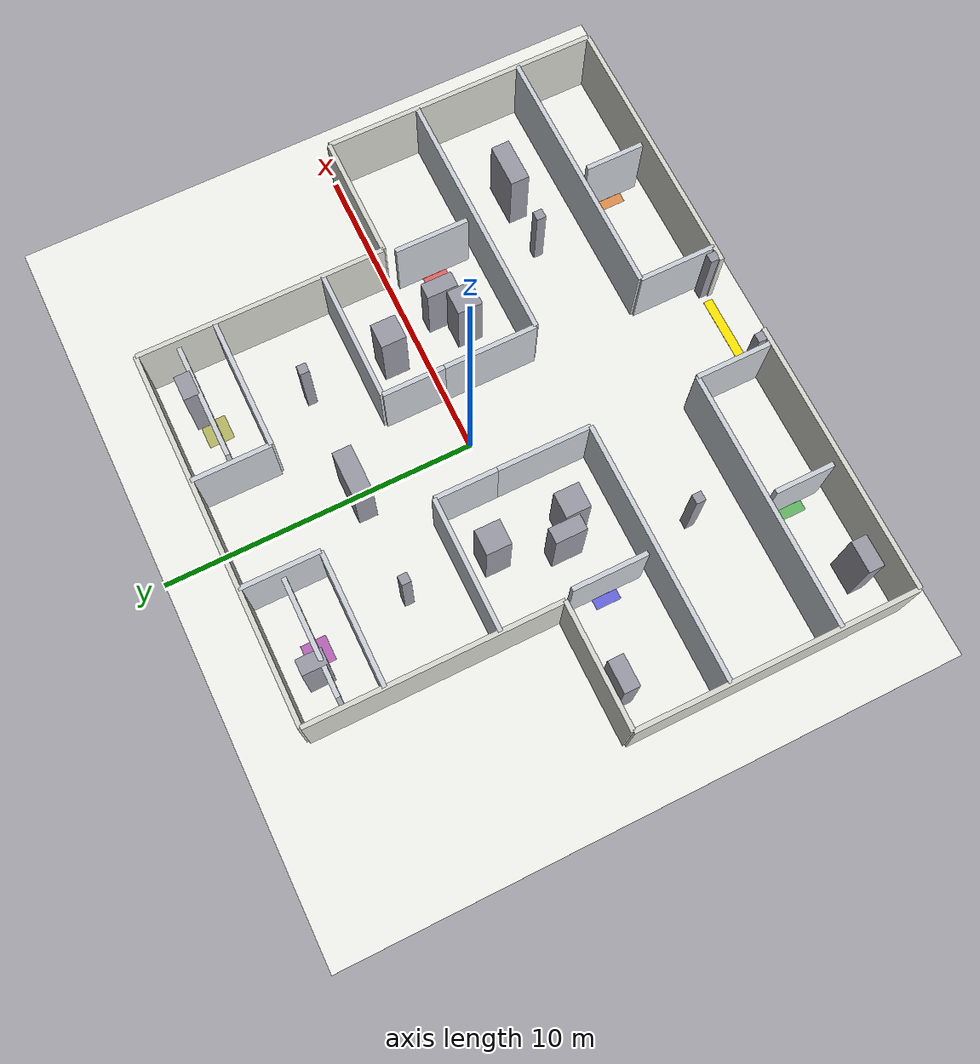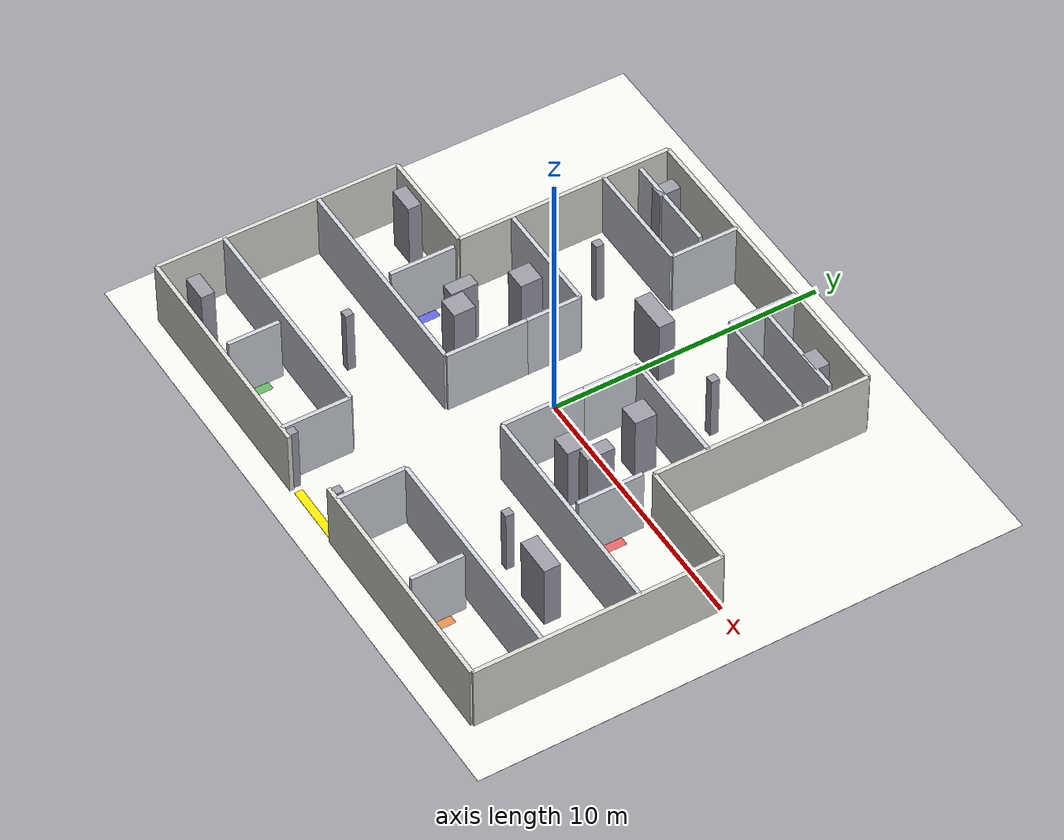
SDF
<?xml version="1.0" ?>
<sdf version="1.6">
  <world name="hospital_ward">

    <!-- 시스템 플러그인 -->
    <plugin filename="gz-sim-sensors-system" name="gz::sim::systems::Sensors">
      <render_engine>ogre2</render_engine>
    </plugin>
    <plugin filename="gz-sim-scene-broadcaster-system" name="gz::sim::systems::SceneBroadcaster"/>
    <plugin filename="gz-sim-user-commands-system" name="gz::sim::systems::UserCommands"/>
    <plugin filename="gz-sim-physics-system" name="gz::sim::systems::Physics"/>
    <plugin filename="gz-sim-contact-system" name="gz::sim::systems::Contact"/>
    <physics type="ode">
      <max_step_size>0.001</max_step_size>
      <real_time_factor>1.0</real_time_factor>
    </physics>
    <light name="sun" type="directional">
      <cast_shadows>true</cast_shadows>
      <pose>0 0 10 0 0 0</pose>
      <diffuse>0.9 0.9 0.9 1</diffuse>
      <specular>0.1 0.1 0.1 1</specular>
      <direction>-0.3 0.3 -1.0</direction>
    </light>
    <light name="ceil1" type="point">
      <pose>0 -4.75 2.4 0 0 0</pose>
      <diffuse>0.7 0.7 0.7 1</diffuse>
      <specular>0.05 0.05 0.05 1</specular>
      <attenuation><range>15</range><constant>0.3</constant><linear>0.05</linear><quadratic>0.01</quadratic></attenuation>
    </light>
    <light name="ceil2" type="point">
      <pose>0 3.75 2.4 0 0 0</pose>
      <diffuse>0.7 0.7 0.7 1</diffuse>
      <specular>0.05 0.05 0.05 1</specular>
      <attenuation><range>15</range><constant>0.3</constant><linear>0.05</linear><quadratic>0.01</quadratic></attenuation>
    </light>

    <model name="ground_plane">
      <static>true</static>
      <pose>0 0 0 0 0 0</pose>
      <link name="link">
        <collision name="c"><geometry><box><size>24 20 0.01</size></box></geometry></collision>
        <visual name="v"><geometry><box><size>24 20 0.01</size></box></geometry>
          <material><ambient>0.95 0.95 0.93 1</ambient><diffuse>0.95 0.95 0.93 1</diffuse></material></visual>
      </link>
    </model>

    <model name="outer_bot_L_001">
      <static>true</static>
      <pose>-5.6250 -9.0000 1.2500 0 0 0</pose>
      <link name="link">
        <collision name="collision">
          <geometry><box><size>8.7500 0.1500 2.5000</size></box></geometry>
        </collision>
        <visual name="visual">
          <geometry><box><size>8.7500 0.1500 2.5000</size></box></geometry>
          <material><ambient>0.85 0.85 0.82 1</ambient><diffuse>0.85 0.85 0.82 1</diffuse></material>
        </visual>
      </link>
    </model>

    <model name="outer_bot_R_002">
      <static>true</static>
      <pose>5.6250 -9.0000 1.2500 0 0 0</pose>
      <link name="link">
        <collision name="collision">
          <geometry><box><size>8.7500 0.1500 2.5000</size></box></geometry>
        </collision>
        <visual name="visual">
          <geometry><box><size>8.7500 0.1500 2.5000</size></box></geometry>
          <material><ambient>0.85 0.85 0.82 1</ambient><diffuse>0.85 0.85 0.82 1</diffuse></material>
        </visual>
      </link>
    </model>

    <model name="outer_left_bot_003">
      <static>true</static>
      <pose>-10.0000 -4.5000 1.2500 0 0 0</pose>
      <link name="link">
        <collision name="collision">
          <geometry><box><size>0.1500 9.0000 2.5000</size></box></geometry>
        </collision>
        <visual name="visual">
          <geometry><box><size>0.1500 9.0000 2.5000</size></box></geometry>
          <material><ambient>0.85 0.85 0.82 1</ambient><diffuse>0.85 0.85 0.82 1</diffuse></material>
        </visual>
      </link>
    </model>

    <model name="outer_right_bot_004">
      <static>true</static>
      <pose>10.0000 -4.5000 1.2500 0 0 0</pose>
      <link name="link">
        <collision name="collision">
          <geometry><box><size>0.1500 9.0000 2.5000</size></box></geometry>
        </collision>
        <visual name="visual">
          <geometry><box><size>0.1500 9.0000 2.5000</size></box></geometry>
          <material><ambient>0.85 0.85 0.82 1</ambient><diffuse>0.85 0.85 0.82 1</diffuse></material>
        </visual>
      </link>
    </model>

    <model name="outer_step_L_005">
      <static>true</static>
      <pose>-8.0000 0.0000 1.2500 0 0 0</pose>
      <link name="link">
        <collision name="collision">
          <geometry><box><size>4.0000 0.1500 2.5000</size></box></geometry>
        </collision>
        <visual name="visual">
          <geometry><box><size>4.0000 0.1500 2.5000</size></box></geometry>
          <material><ambient>0.85 0.85 0.82 1</ambient><diffuse>0.85 0.85 0.82 1</diffuse></material>
        </visual>
      </link>
    </model>

    <model name="outer_step_R_006">
      <static>true</static>
      <pose>8.0000 0.0000 1.2500 0 0 0</pose>
      <link name="link">
        <collision name="collision">
          <geometry><box><size>4.0000 0.1500 2.5000</size></box></geometry>
        </collision>
        <visual name="visual">
          <geometry><box><size>4.0000 0.1500 2.5000</size></box></geometry>
          <material><ambient>0.85 0.85 0.82 1</ambient><diffuse>0.85 0.85 0.82 1</diffuse></material>
        </visual>
      </link>
    </model>

    <model name="outer_left_up_007">
      <static>true</static>
      <pose>-6.0000 4.0000 1.2500 0 0 0</pose>
      <link name="link">
        <collision name="collision">
          <geometry><box><size>0.1500 8.0000 2.5000</size></box></geometry>
        </collision>
        <visual name="visual">
          <geometry><box><size>0.1500 8.0000 2.5000</size></box></geometry>
          <material><ambient>0.85 0.85 0.82 1</ambient><diffuse>0.85 0.85 0.82 1</diffuse></material>
        </visual>
      </link>
    </model>

    <model name="outer_right_up_008">
      <static>true</static>
      <pose>6.0000 4.0000 1.2500 0 0 0</pose>
      <link name="link">
        <collision name="collision">
          <geometry><box><size>0.1500 8.0000 2.5000</size></box></geometry>
        </collision>
        <visual name="visual">
          <geometry><box><size>0.1500 8.0000 2.5000</size></box></geometry>
          <material><ambient>0.85 0.85 0.82 1</ambient><diffuse>0.85 0.85 0.82 1</diffuse></material>
        </visual>
      </link>
    </model>

    <model name="outer_top_009">
      <static>true</static>
      <pose>0.0000 8.0000 1.2500 0 0 0</pose>
      <link name="link">
        <collision name="collision">
          <geometry><box><size>12.0000 0.1500 2.5000</size></box></geometry>
        </collision>
        <visual name="visual">
          <geometry><box><size>12.0000 0.1500 2.5000</size></box></geometry>
          <material><ambient>0.85 0.85 0.82 1</ambient><diffuse>0.85 0.85 0.82 1</diffuse></material>
        </visual>
      </link>
    </model>

    <model name="corH_top_L_010">
      <static>true</static>
      <pose>-5.8750 -3.0000 1.2500 0 0 0</pose>
      <link name="link">
        <collision name="collision">
          <geometry><box><size>8.2500 0.1500 2.5000</size></box></geometry>
        </collision>
        <visual name="visual">
          <geometry><box><size>8.2500 0.1500 2.5000</size></box></geometry>
          <material><ambient>0.80 0.82 0.85 1</ambient><diffuse>0.80 0.82 0.85 1</diffuse></material>
        </visual>
      </link>
    </model>

    <model name="corH_top_R_011">
      <static>true</static>
      <pose>5.8750 -3.0000 1.2500 0 0 0</pose>
      <link name="link">
        <collision name="collision">
          <geometry><box><size>8.2500 0.1500 2.5000</size></box></geometry>
        </collision>
        <visual name="visual">
          <geometry><box><size>8.2500 0.1500 2.5000</size></box></geometry>
          <material><ambient>0.80 0.82 0.85 1</ambient><diffuse>0.80 0.82 0.85 1</diffuse></material>
        </visual>
      </link>
    </model>

    <model name="corH_bot_L_012">
      <static>true</static>
      <pose>-5.8750 -6.5000 1.2500 0 0 0</pose>
      <link name="link">
        <collision name="collision">
          <geometry><box><size>8.2500 0.1500 2.5000</size></box></geometry>
        </collision>
        <visual name="visual">
          <geometry><box><size>8.2500 0.1500 2.5000</size></box></geometry>
          <material><ambient>0.80 0.82 0.85 1</ambient><diffuse>0.80 0.82 0.85 1</diffuse></material>
        </visual>
      </link>
    </model>

    <model name="corH_bot_R_013">
      <static>true</static>
      <pose>5.8750 -6.5000 1.2500 0 0 0</pose>
      <link name="link">
        <collision name="collision">
          <geometry><box><size>8.2500 0.1500 2.5000</size></box></geometry>
        </collision>
        <visual name="visual">
          <geometry><box><size>8.2500 0.1500 2.5000</size></box></geometry>
          <material><ambient>0.80 0.82 0.85 1</ambient><diffuse>0.80 0.82 0.85 1</diffuse></material>
        </visual>
      </link>
    </model>

    <model name="corV_L_bot_014">
      <static>true</static>
      <pose>-1.7500 -1.5000 1.2500 0 0 0</pose>
      <link name="link">
        <collision name="collision">
          <geometry><box><size>0.1500 3.0000 2.5000</size></box></geometry>
        </collision>
        <visual name="visual">
          <geometry><box><size>0.1500 3.0000 2.5000</size></box></geometry>
          <material><ambient>0.80 0.82 0.85 1</ambient><diffuse>0.80 0.82 0.85 1</diffuse></material>
        </visual>
      </link>
    </model>

    <model name="corV_R_bot_015">
      <static>true</static>
      <pose>1.7500 -1.5000 1.2500 0 0 0</pose>
      <link name="link">
        <collision name="collision">
          <geometry><box><size>0.1500 3.0000 2.5000</size></box></geometry>
        </collision>
        <visual name="visual">
          <geometry><box><size>0.1500 3.0000 2.5000</size></box></geometry>
          <material><ambient>0.80 0.82 0.85 1</ambient><diffuse>0.80 0.82 0.85 1</diffuse></material>
        </visual>
      </link>
    </model>

    <model name="corV_L_mid_016">
      <static>true</static>
      <pose>-1.7500 1.0000 1.2500 0 0 0</pose>
      <link name="link">
        <collision name="collision">
          <geometry><box><size>0.1500 2.0000 2.5000</size></box></geometry>
        </collision>
        <visual name="visual">
          <geometry><box><size>0.1500 2.0000 2.5000</size></box></geometry>
          <material><ambient>0.80 0.82 0.85 1</ambient><diffuse>0.80 0.82 0.85 1</diffuse></material>
        </visual>
      </link>
    </model>

    <model name="corV_R_mid_017">
      <static>true</static>
      <pose>1.7500 1.0000 1.2500 0 0 0</pose>
      <link name="link">
        <collision name="collision">
          <geometry><box><size>0.1500 2.0000 2.5000</size></box></geometry>
        </collision>
        <visual name="visual">
          <geometry><box><size>0.1500 2.0000 2.5000</size></box></geometry>
          <material><ambient>0.80 0.82 0.85 1</ambient><diffuse>0.80 0.82 0.85 1</diffuse></material>
        </visual>
      </link>
    </model>

    <model name="corV_L_up_018">
      <static>true</static>
      <pose>-1.7500 6.7500 1.2500 0 0 0</pose>
      <link name="link">
        <collision name="collision">
          <geometry><box><size>0.1500 2.5000 2.5000</size></box></geometry>
        </collision>
        <visual name="visual">
          <geometry><box><size>0.1500 2.5000 2.5000</size></box></geometry>
          <material><ambient>0.80 0.82 0.85 1</ambient><diffuse>0.80 0.82 0.85 1</diffuse></material>
        </visual>
      </link>
    </model>

    <model name="corV_R_up_019">
      <static>true</static>
      <pose>1.7500 6.7500 1.2500 0 0 0</pose>
      <link name="link">
        <collision name="collision">
          <geometry><box><size>0.1500 2.5000 2.5000</size></box></geometry>
        </collision>
        <visual name="visual">
          <geometry><box><size>0.1500 2.5000 2.5000</size></box></geometry>
          <material><ambient>0.80 0.82 0.85 1</ambient><diffuse>0.80 0.82 0.85 1</diffuse></material>
        </visual>
      </link>
    </model>

    <model name="corV_L_ent_020">
      <static>true</static>
      <pose>-1.7500 -7.7500 1.2500 0 0 0</pose>
      <link name="link">
        <collision name="collision">
          <geometry><box><size>0.1500 2.5000 2.5000</size></box></geometry>
        </collision>
        <visual name="visual">
          <geometry><box><size>0.1500 2.5000 2.5000</size></box></geometry>
          <material><ambient>0.80 0.82 0.85 1</ambient><diffuse>0.80 0.82 0.85 1</diffuse></material>
        </visual>
      </link>
    </model>

    <model name="corV_R_ent_021">
      <static>true</static>
      <pose>1.7500 -7.7500 1.2500 0 0 0</pose>
      <link name="link">
        <collision name="collision">
          <geometry><box><size>0.1500 2.5000 2.5000</size></box></geometry>
        </collision>
        <visual name="visual">
          <geometry><box><size>0.1500 2.5000 2.5000</size></box></geometry>
          <material><ambient>0.80 0.82 0.85 1</ambient><diffuse>0.80 0.82 0.85 1</diffuse></material>
        </visual>
      </link>
    </model>

    <model name="corH2_bot_L_022">
      <static>true</static>
      <pose>-3.8750 2.0000 1.2500 0 0 0</pose>
      <link name="link">
        <collision name="collision">
          <geometry><box><size>4.2500 0.1500 2.5000</size></box></geometry>
        </collision>
        <visual name="visual">
          <geometry><box><size>4.2500 0.1500 2.5000</size></box></geometry>
          <material><ambient>0.80 0.82 0.85 1</ambient><diffuse>0.80 0.82 0.85 1</diffuse></material>
        </visual>
      </link>
    </model>

    <model name="corH2_bot_R_023">
      <static>true</static>
      <pose>3.8750 2.0000 1.2500 0 0 0</pose>
      <link name="link">
        <collision name="collision">
          <geometry><box><size>4.2500 0.1500 2.5000</size></box></geometry>
        </collision>
        <visual name="visual">
          <geometry><box><size>4.2500 0.1500 2.5000</size></box></geometry>
          <material><ambient>0.80 0.82 0.85 1</ambient><diffuse>0.80 0.82 0.85 1</diffuse></material>
        </visual>
      </link>
    </model>

    <model name="corH2_top_L_024">
      <static>true</static>
      <pose>-3.8750 5.5000 1.2500 0 0 0</pose>
      <link name="link">
        <collision name="collision">
          <geometry><box><size>4.2500 0.1500 2.5000</size></box></geometry>
        </collision>
        <visual name="visual">
          <geometry><box><size>4.2500 0.1500 2.5000</size></box></geometry>
          <material><ambient>0.80 0.82 0.85 1</ambient><diffuse>0.80 0.82 0.85 1</diffuse></material>
        </visual>
      </link>
    </model>

    <model name="corH2_top_R_025">
      <static>true</static>
      <pose>3.8750 5.5000 1.2500 0 0 0</pose>
      <link name="link">
        <collision name="collision">
          <geometry><box><size>4.2500 0.1500 2.5000</size></box></geometry>
        </collision>
        <visual name="visual">
          <geometry><box><size>4.2500 0.1500 2.5000</size></box></geometry>
          <material><ambient>0.80 0.82 0.85 1</ambient><diffuse>0.80 0.82 0.85 1</diffuse></material>
        </visual>
      </link>
    </model>

    <model name="ward4_div_026">
      <static>true</static>
      <pose>-5.8000 -1.5000 1.2500 0 0 0</pose>
      <link name="link">
        <collision name="collision">
          <geometry><box><size>0.1500 2.4000 2.5000</size></box></geometry>
        </collision>
        <visual name="visual">
          <geometry><box><size>0.1500 2.4000 2.5000</size></box></geometry>
          <material><ambient>0.80 0.82 0.85 1</ambient><diffuse>0.80 0.82 0.85 1</diffuse></material>
        </visual>
      </link>
    </model>

    <model name="ward1_div_027">
      <static>true</static>
      <pose>5.8000 -1.5000 1.2500 0 0 0</pose>
      <link name="link">
        <collision name="collision">
          <geometry><box><size>0.1500 2.4000 2.5000</size></box></geometry>
        </collision>
        <visual name="visual">
          <geometry><box><size>0.1500 2.4000 2.5000</size></box></geometry>
          <material><ambient>0.80 0.82 0.85 1</ambient><diffuse>0.80 0.82 0.85 1</diffuse></material>
        </visual>
      </link>
    </model>

    <model name="ward3_div_028">
      <static>true</static>
      <pose>-5.8000 -7.7500 1.2500 0 0 0</pose>
      <link name="link">
        <collision name="collision">
          <geometry><box><size>0.1500 1.9000 2.5000</size></box></geometry>
        </collision>
        <visual name="visual">
          <geometry><box><size>0.1500 1.9000 2.5000</size></box></geometry>
          <material><ambient>0.80 0.82 0.85 1</ambient><diffuse>0.80 0.82 0.85 1</diffuse></material>
        </visual>
      </link>
    </model>

    <model name="ward2_div_029">
      <static>true</static>
      <pose>5.8000 -7.7500 1.2500 0 0 0</pose>
      <link name="link">
        <collision name="collision">
          <geometry><box><size>0.1500 1.9000 2.5000</size></box></geometry>
        </collision>
        <visual name="visual">
          <geometry><box><size>0.1500 1.9000 2.5000</size></box></geometry>
          <material><ambient>0.80 0.82 0.85 1</ambient><diffuse>0.80 0.82 0.85 1</diffuse></material>
        </visual>
      </link>
    </model>

    <model name="ward5_div_030">
      <static>true</static>
      <pose>-3.8500 6.7500 1.2500 0 0 0</pose>
      <link name="link">
        <collision name="collision">
          <geometry><box><size>3.7000 0.1500 2.5000</size></box></geometry>
        </collision>
        <visual name="visual">
          <geometry><box><size>3.7000 0.1500 2.5000</size></box></geometry>
          <material><ambient>0.80 0.82 0.85 1</ambient><diffuse>0.80 0.82 0.85 1</diffuse></material>
        </visual>
      </link>
    </model>

    <model name="ward6_div_031">
      <static>true</static>
      <pose>3.8500 6.7500 1.2500 0 0 0</pose>
      <link name="link">
        <collision name="collision">
          <geometry><box><size>3.7000 0.1500 2.5000</size></box></geometry>
        </collision>
        <visual name="visual">
          <geometry><box><size>3.7000 0.1500 2.5000</size></box></geometry>
          <material><ambient>0.80 0.82 0.85 1</ambient><diffuse>0.80 0.82 0.85 1</diffuse></material>
        </visual>
      </link>
    </model>

    <model name="elevator_L1_032">
      <static>true</static>
      <pose>-3.5000 -1.5000 1.2500 0 0 0</pose>
      <link name="link">
        <collision name="collision">
          <geometry><box><size>0.8000 0.8000 2.5000</size></box></geometry>
        </collision>
        <visual name="visual">
          <geometry><box><size>0.8000 0.8000 2.5000</size></box></geometry>
          <material><ambient>0.6 0.6 0.65 1</ambient><diffuse>0.6 0.6 0.65 1</diffuse></material>
        </visual>
      </link>
    </model>

    <model name="elevator_R1_033">
      <static>true</static>
      <pose>3.5000 -1.5000 1.2500 0 0 0</pose>
      <link name="link">
        <collision name="collision">
          <geometry><box><size>0.8000 0.8000 2.5000</size></box></geometry>
        </collision>
        <visual name="visual">
          <geometry><box><size>0.8000 0.8000 2.5000</size></box></geometry>
          <material><ambient>0.6 0.6 0.65 1</ambient><diffuse>0.6 0.6 0.65 1</diffuse></material>
        </visual>
      </link>
    </model>

    <model name="elevator_L2_034">
      <static>true</static>
      <pose>-3.5000 1.0000 1.2500 0 0 0</pose>
      <link name="link">
        <collision name="collision">
          <geometry><box><size>0.8000 0.8000 2.5000</size></box></geometry>
        </collision>
        <visual name="visual">
          <geometry><box><size>0.8000 0.8000 2.5000</size></box></geometry>
          <material><ambient>0.6 0.6 0.65 1</ambient><diffuse>0.6 0.6 0.65 1</diffuse></material>
        </visual>
      </link>
    </model>

    <model name="elevator_R2_035">
      <static>true</static>
      <pose>3.5000 1.0000 1.2500 0 0 0</pose>
      <link name="link">
        <collision name="collision">
          <geometry><box><size>0.8000 0.8000 2.5000</size></box></geometry>
        </collision>
        <visual name="visual">
          <geometry><box><size>0.8000 0.8000 2.5000</size></box></geometry>
          <material><ambient>0.6 0.6 0.65 1</ambient><diffuse>0.6 0.6 0.65 1</diffuse></material>
        </visual>
      </link>
    </model>

    <model name="restroom_4_036">
      <static>true</static>
      <pose>-8.5000 -0.5000 1.2500 0 0 0</pose>
      <link name="link">
        <collision name="collision">
          <geometry><box><size>1.0000 0.5000 2.5000</size></box></geometry>
        </collision>
        <visual name="visual">
          <geometry><box><size>1.0000 0.5000 2.5000</size></box></geometry>
          <material><ambient>0.6 0.6 0.65 1</ambient><diffuse>0.6 0.6 0.65 1</diffuse></material>
        </visual>
      </link>
    </model>

    <model name="restroom_3_037">
      <static>true</static>
      <pose>-8.5000 -8.2000 1.2500 0 0 0</pose>
      <link name="link">
        <collision name="collision">
          <geometry><box><size>1.0000 0.5000 2.5000</size></box></geometry>
        </collision>
        <visual name="visual">
          <geometry><box><size>1.0000 0.5000 2.5000</size></box></geometry>
          <material><ambient>0.6 0.6 0.65 1</ambient><diffuse>0.6 0.6 0.65 1</diffuse></material>
        </visual>
      </link>
    </model>

    <model name="info_desk_038">
      <static>true</static>
      <pose>0.0000 3.7500 1.2500 0 0 0</pose>
      <link name="link">
        <collision name="collision">
          <geometry><box><size>1.5000 0.6000 2.5000</size></box></geometry>
        </collision>
        <visual name="visual">
          <geometry><box><size>1.5000 0.6000 2.5000</size></box></geometry>
          <material><ambient>0.6 0.6 0.65 1</ambient><diffuse>0.6 0.6 0.65 1</diffuse></material>
        </visual>
      </link>
    </model>

    <model name="reception_039">
      <static>true</static>
      <pose>7.0000 -4.7500 1.2500 0 0 0</pose>
      <link name="link">
        <collision name="collision">
          <geometry><box><size>1.4000 0.6000 2.5000</size></box></geometry>
        </collision>
        <visual name="visual">
          <geometry><box><size>1.4000 0.6000 2.5000</size></box></geometry>
          <material><ambient>0.6 0.6 0.65 1</ambient><diffuse>0.6 0.6 0.65 1</diffuse></material>
        </visual>
      </link>
    </model>

    <model name="ent_pillar_L_040">
      <static>true</static>
      <pose>-1.4500 -8.8000 1.2500 0 0 0</pose>
      <link name="link">
        <collision name="collision">
          <geometry><box><size>0.3000 0.3000 2.5000</size></box></geometry>
        </collision>
        <visual name="visual">
          <geometry><box><size>0.3000 0.3000 2.5000</size></box></geometry>
          <material><ambient>0.6 0.6 0.65 1</ambient><diffuse>0.6 0.6 0.65 1</diffuse></material>
        </visual>
      </link>
    </model>

    <model name="ent_pillar_R_041">
      <static>true</static>
      <pose>1.4500 -8.8000 1.2500 0 0 0</pose>
      <link name="link">
        <collision name="collision">
          <geometry><box><size>0.3000 0.3000 2.5000</size></box></geometry>
        </collision>
        <visual name="visual">
          <geometry><box><size>0.3000 0.3000 2.5000</size></box></geometry>
          <material><ambient>0.6 0.6 0.65 1</ambient><diffuse>0.6 0.6 0.65 1</diffuse></material>
        </visual>
      </link>
    </model>

    <model name="stairwell_L_042">
      <static>true</static>
      <pose>-4.2000 -1.0000 1.2500 0 0 0</pose>
      <link name="link">
        <collision name="collision">
          <geometry><box><size>0.5000 1.0000 2.5000</size></box></geometry>
        </collision>
        <visual name="visual">
          <geometry><box><size>0.5000 1.0000 2.5000</size></box></geometry>
          <material><ambient>0.6 0.6 0.65 1</ambient><diffuse>0.6 0.6 0.65 1</diffuse></material>
        </visual>
      </link>
    </model>

    <model name="stairwell_R_043">
      <static>true</static>
      <pose>4.2000 -1.0000 1.2500 0 0 0</pose>
      <link name="link">
        <collision name="collision">
          <geometry><box><size>0.5000 1.0000 2.5000</size></box></geometry>
        </collision>
        <visual name="visual">
          <geometry><box><size>0.5000 1.0000 2.5000</size></box></geometry>
          <material><ambient>0.6 0.6 0.65 1</ambient><diffuse>0.6 0.6 0.65 1</diffuse></material>
        </visual>
      </link>
    </model>

    <model name="escalator_044">
      <static>true</static>
      <pose>-4.5000 7.0000 1.2500 0 0 0</pose>
      <link name="link">
        <collision name="collision">
          <geometry><box><size>0.5000 0.8000 2.5000</size></box></geometry>
        </collision>
        <visual name="visual">
          <geometry><box><size>0.5000 0.8000 2.5000</size></box></geometry>
          <material><ambient>0.6 0.6 0.65 1</ambient><diffuse>0.6 0.6 0.65 1</diffuse></material>
        </visual>
      </link>
    </model>

    <model name="convenience_045">
      <static>true</static>
      <pose>4.5000 7.0000 1.2500 0 0 0</pose>
      <link name="link">
        <collision name="collision">
          <geometry><box><size>0.8000 0.5000 2.5000</size></box></geometry>
        </collision>
        <visual name="visual">
          <geometry><box><size>0.8000 0.5000 2.5000</size></box></geometry>
          <material><ambient>0.6 0.6 0.65 1</ambient><diffuse>0.6 0.6 0.65 1</diffuse></material>
        </visual>
      </link>
    </model>

    <model name="pillar_1_046">
      <static>true</static>
      <pose>-5.0000 -4.7500 1.2500 0 0 0</pose>
      <link name="link">
        <collision name="collision">
          <geometry><box><size>0.3000 0.3000 2.5000</size></box></geometry>
        </collision>
        <visual name="visual">
          <geometry><box><size>0.3000 0.3000 2.5000</size></box></geometry>
          <material><ambient>0.6 0.6 0.65 1</ambient><diffuse>0.6 0.6 0.65 1</diffuse></material>
        </visual>
      </link>
    </model>

    <model name="pillar_2_047">
      <static>true</static>
      <pose>5.0000 -4.7500 1.2500 0 0 0</pose>
      <link name="link">
        <collision name="collision">
          <geometry><box><size>0.3000 0.3000 2.5000</size></box></geometry>
        </collision>
        <visual name="visual">
          <geometry><box><size>0.3000 0.3000 2.5000</size></box></geometry>
          <material><ambient>0.6 0.6 0.65 1</ambient><diffuse>0.6 0.6 0.65 1</diffuse></material>
        </visual>
      </link>
    </model>

    <model name="pillar_4_049">
      <static>true</static>
      <pose>-3.5000 3.7500 1.2500 0 0 0</pose>
      <link name="link">
        <collision name="collision">
          <geometry><box><size>0.3000 0.3000 2.5000</size></box></geometry>
        </collision>
        <visual name="visual">
          <geometry><box><size>0.3000 0.3000 2.5000</size></box></geometry>
          <material><ambient>0.6 0.6 0.65 1</ambient><diffuse>0.6 0.6 0.65 1</diffuse></material>
        </visual>
      </link>
    </model>

    <model name="pillar_5_050">
      <static>true</static>
      <pose>3.5000 3.7500 1.2500 0 0 0</pose>
      <link name="link">
        <collision name="collision">
          <geometry><box><size>0.3000 0.3000 2.5000</size></box></geometry>
        </collision>
        <visual name="visual">
          <geometry><box><size>0.3000 0.3000 2.5000</size></box></geometry>
          <material><ambient>0.6 0.6 0.65 1</ambient><diffuse>0.6 0.6 0.65 1</diffuse></material>
        </visual>
      </link>
    </model>

    <!-- 출입구 바닥 마커 -->
    <model name="marker_entrance">
      <static>true</static>
      <pose>0 -8.85 0.011 0 0 0</pose>
      <link name="link"><visual name="v"><geometry><box><size>2.2 0.3 0.01</size></box></geometry>
        <material><ambient>1 0.9 0 0.9</ambient><diffuse>1 0.9 0 0.9</diffuse></material></visual></link>
    </model>

    <!-- 병동 마커 -->
    <model name="m_w1"><static>true</static><pose>5.8 -1.5 0.011 0 0 0</pose>
      <link name="l"><visual name="v"><geometry><box><size>0.8 0.8 0.01</size></box></geometry>
        <material><ambient>0.9 0.3 0.3 0.8</ambient><diffuse>0.9 0.3 0.3 0.8</diffuse></material></visual></link></model>
    <model name="m_w2"><static>true</static><pose>5.8 -7.75 0.011 0 0 0</pose>
      <link name="l"><visual name="v"><geometry><box><size>0.8 0.8 0.01</size></box></geometry>
        <material><ambient>0.9 0.5 0.2 0.8</ambient><diffuse>0.9 0.5 0.2 0.8</diffuse></material></visual></link></model>
    <model name="m_w3"><static>true</static><pose>-5.8 -7.75 0.011 0 0 0</pose>
      <link name="l"><visual name="v"><geometry><box><size>0.8 0.8 0.01</size></box></geometry>
        <material><ambient>0.3 0.7 0.3 0.8</ambient><diffuse>0.3 0.7 0.3 0.8</diffuse></material></visual></link></model>
    <model name="m_w4"><static>true</static><pose>-5.8 -1.5 0.011 0 0 0</pose>
      <link name="l"><visual name="v"><geometry><box><size>0.8 0.8 0.01</size></box></geometry>
        <material><ambient>0.3 0.3 0.9 0.8</ambient><diffuse>0.3 0.3 0.9 0.8</diffuse></material></visual></link></model>
    <model name="m_w5"><static>true</static><pose>-3.8 6.75 0.011 0 0 0</pose>
      <link name="l"><visual name="v"><geometry><box><size>0.8 0.8 0.01</size></box></geometry>
        <material><ambient>0.7 0.3 0.7 0.8</ambient><diffuse>0.7 0.3 0.7 0.8</diffuse></material></visual></link></model>
    <model name="m_w6"><static>true</static><pose>3.8 6.75 0.011 0 0 0</pose>
      <link name="l"><visual name="v"><geometry><box><size>0.8 0.8 0.01</size></box></geometry>
        <material><ambient>0.7 0.7 0.3 0.8</ambient><diffuse>0.7 0.7 0.3 0.8</diffuse></material></visual></link></model>

  </world>
</sdf>
